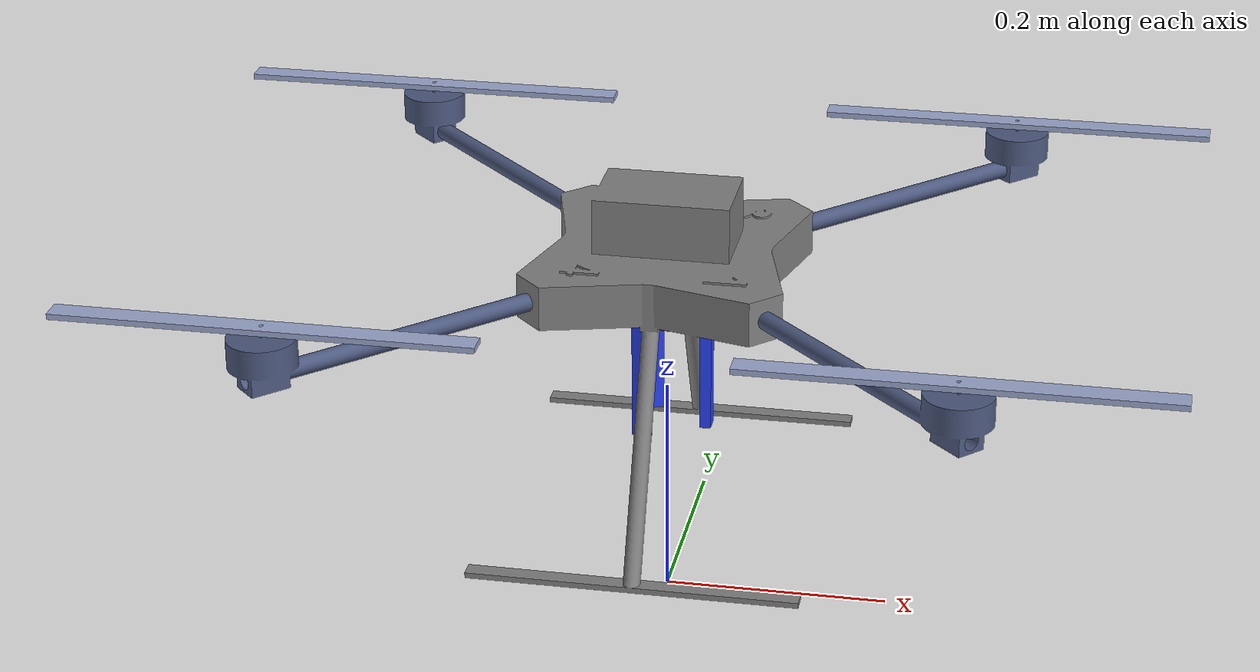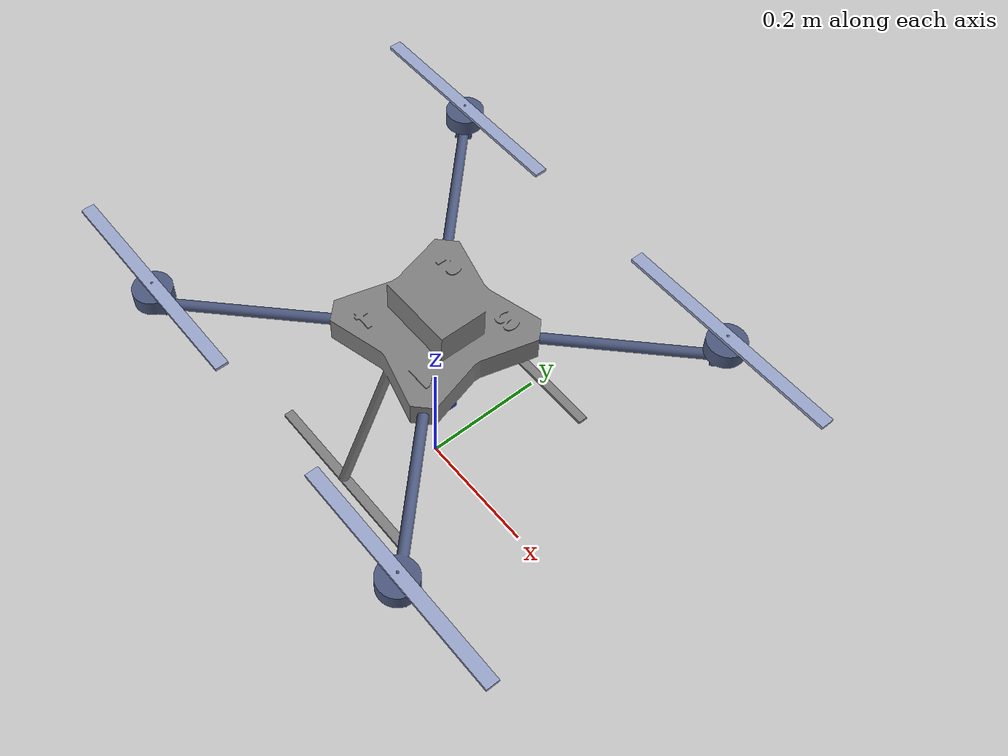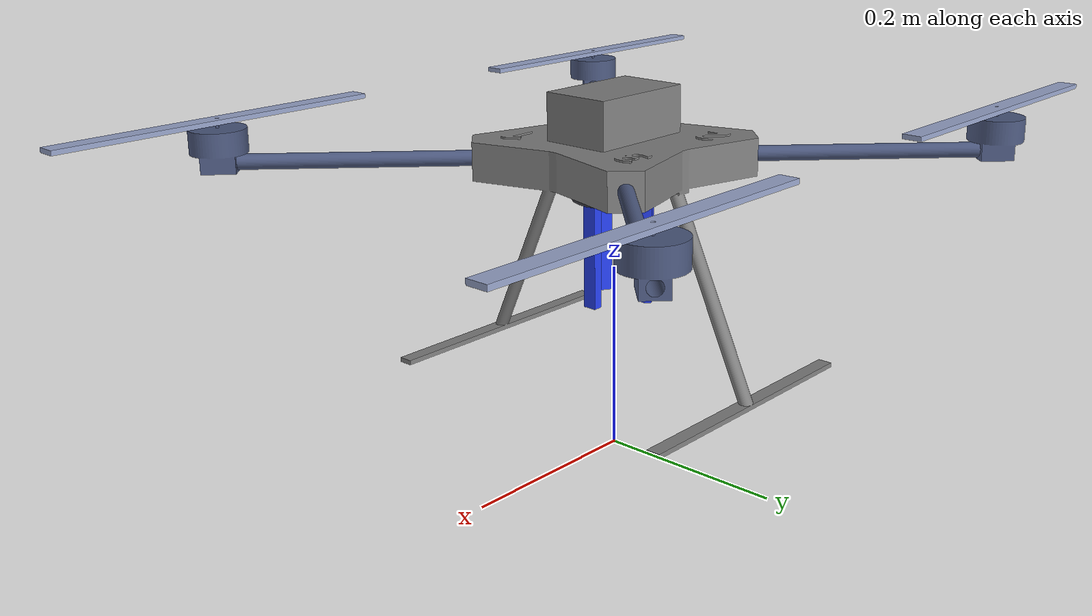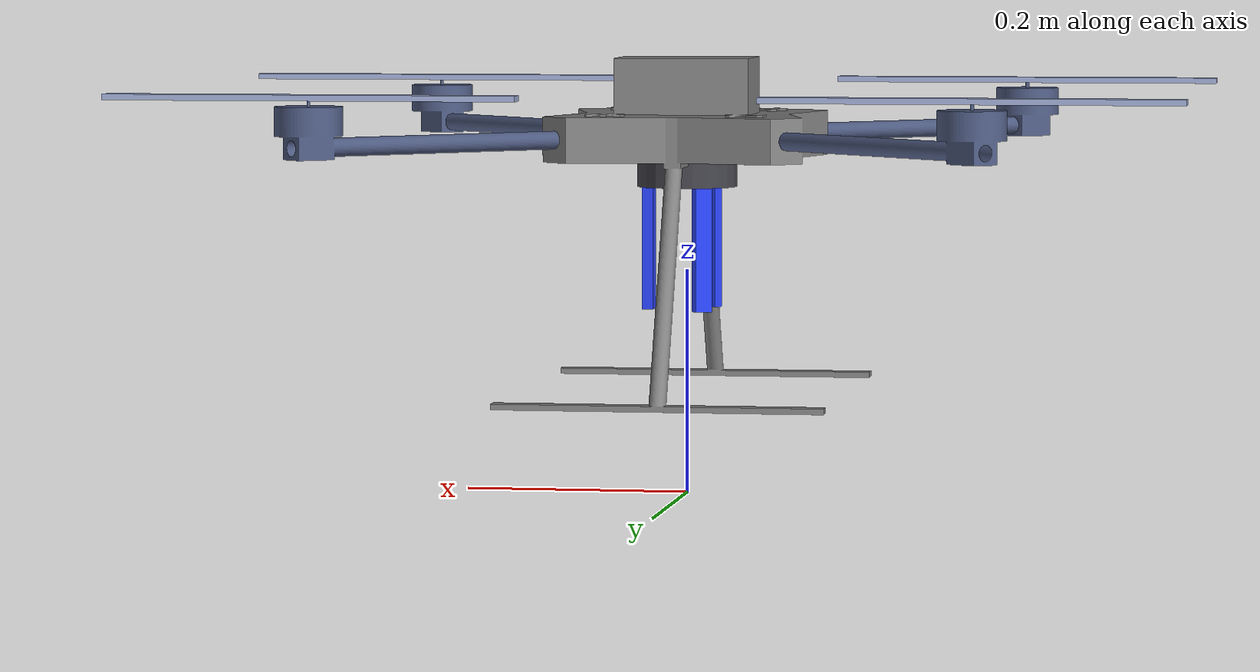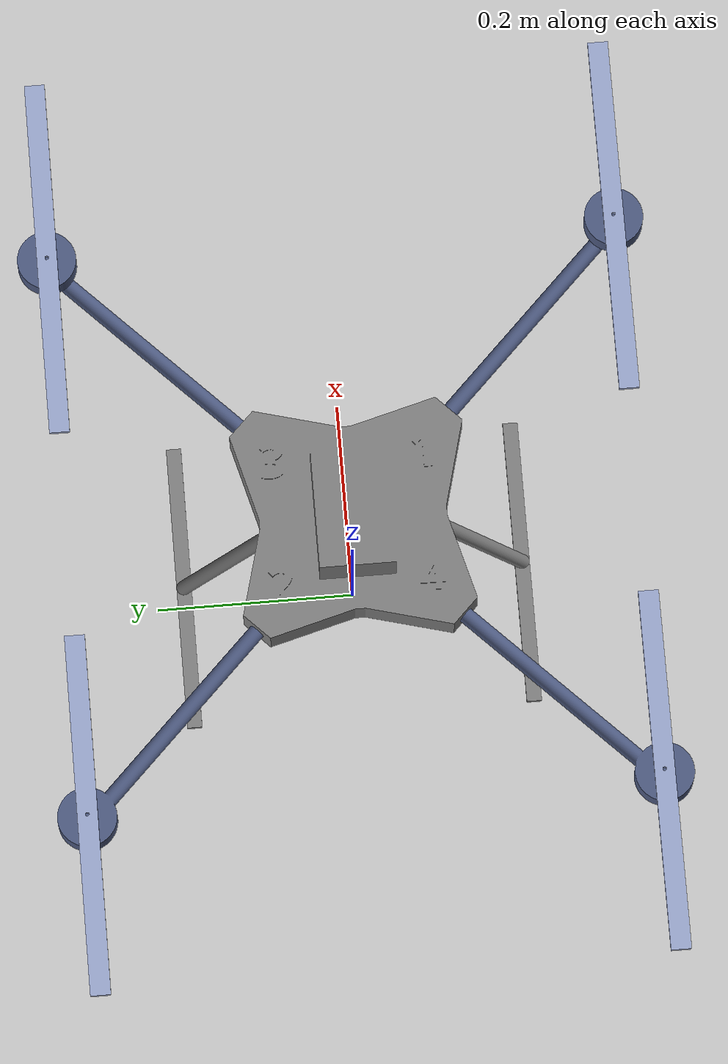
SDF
<?xml version="1.0" encoding="UTF-8"?>
<sdf version='1.9'>
  <model name='hillstar_gripper'>
    <include merge='true'>
      <uri>model://hillstar</uri>
    </include>
    <include merge='true'>
      <uri>model://gripper_3finger</uri>
    </include>

    <joint name="palm_joint" type="fixed">
      <parent>base_link</parent>
      <child>gripper_3finger/palm</child>
    </joint>

    <!-- Glue joints: mount each finger onto the vehicle body. Axis/limit/
         dynamics are unchanged from the original monolithic hillstar. -->
    <joint name="finger_0_joint" type="revolute">
      <parent>base_link</parent>
      <child>gripper_3finger/finger_0</child>
      <axis>
        <xyz>0 -1 0</xyz>
        <limit>
          <lower>-0.6</lower>
          <upper>0.6</upper>
          <effort>0.5</effort>
          <velocity>3.0</velocity>
        </limit>
        <dynamics>
          <damping>0.02</damping>
          <friction>0.005</friction>
        </dynamics>
      </axis>
    </joint>

    <joint name="finger_1_joint" type="revolute">
      <parent>base_link</parent>
      <child>gripper_3finger/finger_1</child>
      <axis>
        <xyz>0 -1 0</xyz>
        <limit>
          <lower>-0.6</lower>
          <upper>0.6</upper>
          <effort>0.5</effort>
          <velocity>3.0</velocity>
        </limit>
        <dynamics>
          <damping>0.02</damping>
          <friction>0.005</friction>
        </dynamics>
      </axis>
    </joint>

    <joint name="finger_2_joint" type="revolute">
      <parent>base_link</parent>
      <child>gripper_3finger/finger_2</child>
      <axis>
        <xyz>0 -1 0</xyz>
        <limit>
          <lower>-0.6</lower>
          <upper>0.6</upper>
          <effort>0.5</effort>
          <velocity>3.0</velocity>
        </limit>
        <dynamics>
          <damping>0.02</damping>
          <friction>0.005</friction>
        </dynamics>
      </axis>
    </joint>

    <plugin filename="GripperController" name="gripper_controller::GripperController">
      <gripper_base_link>base_link</gripper_base_link>
      <finger_joint>finger_0_joint</finger_joint>
      <finger_joint>finger_1_joint</finger_joint>
      <finger_joint>finger_2_joint</finger_joint>
      <finger_collision>gripper_3finger/finger_0_collision</finger_collision>
      <finger_collision>gripper_3finger/finger_1_collision</finger_collision>
      <finger_collision>gripper_3finger/finger_2_collision</finger_collision>
      <finger_contact_topic>/gripper_3finger/finger_0_contact</finger_contact_topic>
      <finger_contact_topic>/gripper_3finger/finger_1_contact</finger_contact_topic>
      <finger_contact_topic>/gripper_3finger/finger_2_contact</finger_contact_topic>
      <!-- open = fingers spread outward, ready to grab; closed = fingers
           curled toward center, object grasped; 30 deg from vertical. -->
      <open_position>0.5235</open_position>
      <closed_position>-0.5235</closed_position>
      <finger_p_gain>1.5</finger_p_gain>
      <finger_d_gain>0.02</finger_d_gain>
      <finger_effort_limit>0.5</finger_effort_limit>
      <command_topic>/hillstar/gripper_cmd</command_topic>
      <state_topic>/hillstar/gripper_state</state_topic>
      <grasp_radius>0.25</grasp_radius>
      <!-- world-Z offset of the gripper's capture point, relative to
           base_link's own origin. 7.2 cm below frame base
           Gazebo frame is Z-up -->
      <grasp_center_offset>0 0 0.074</grasp_center_offset>
      <vehicle_model_name>hillstar_gripper</vehicle_model_name>
    </plugin>
  </model>
</sdf>
